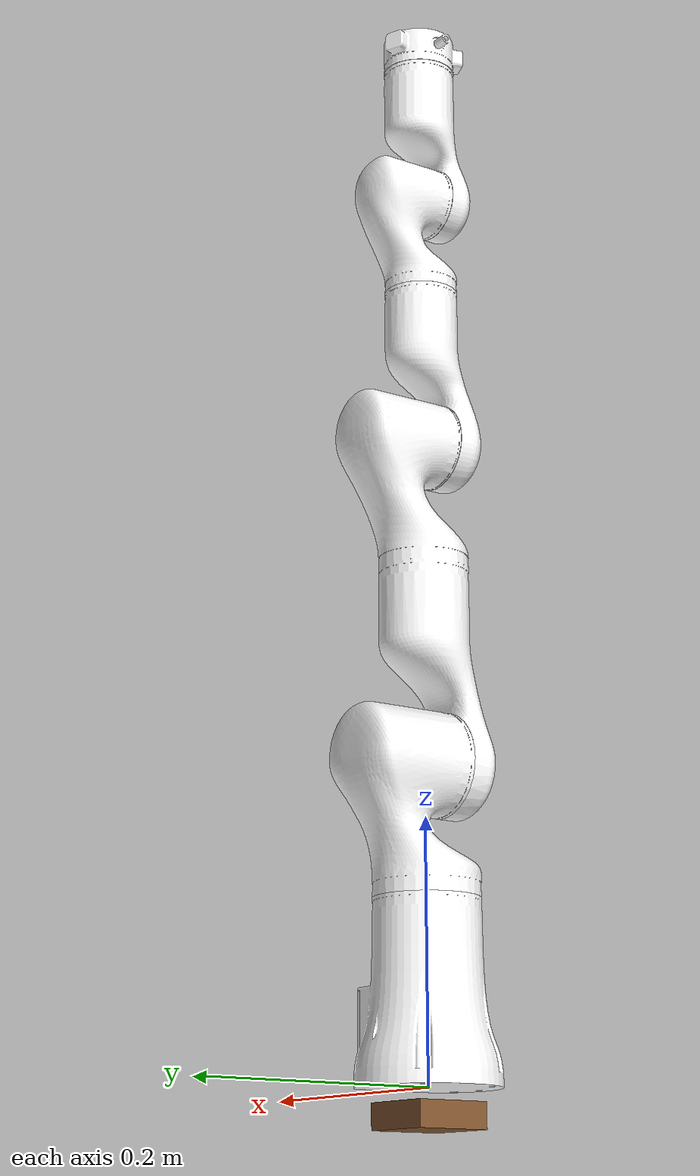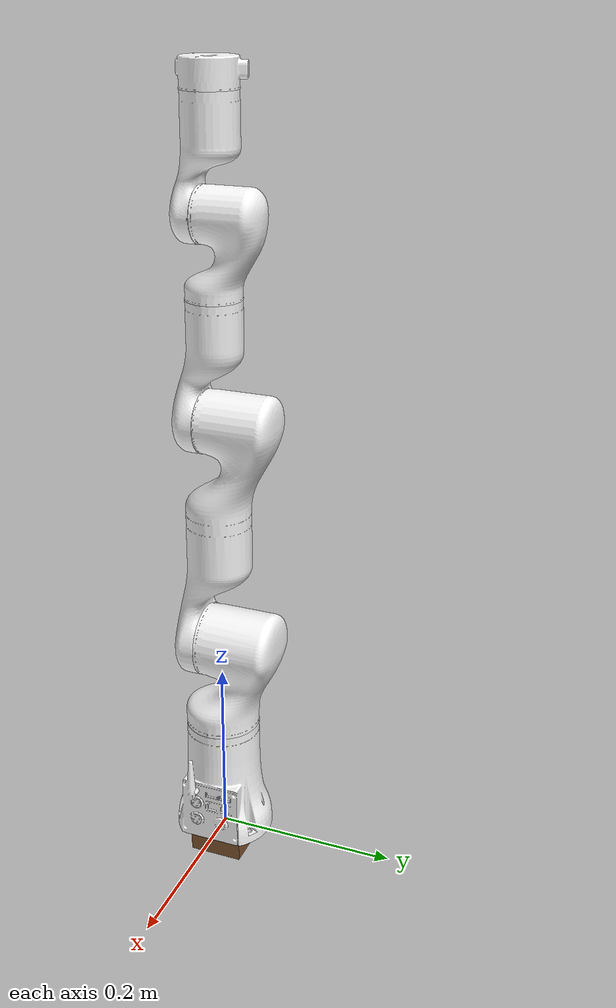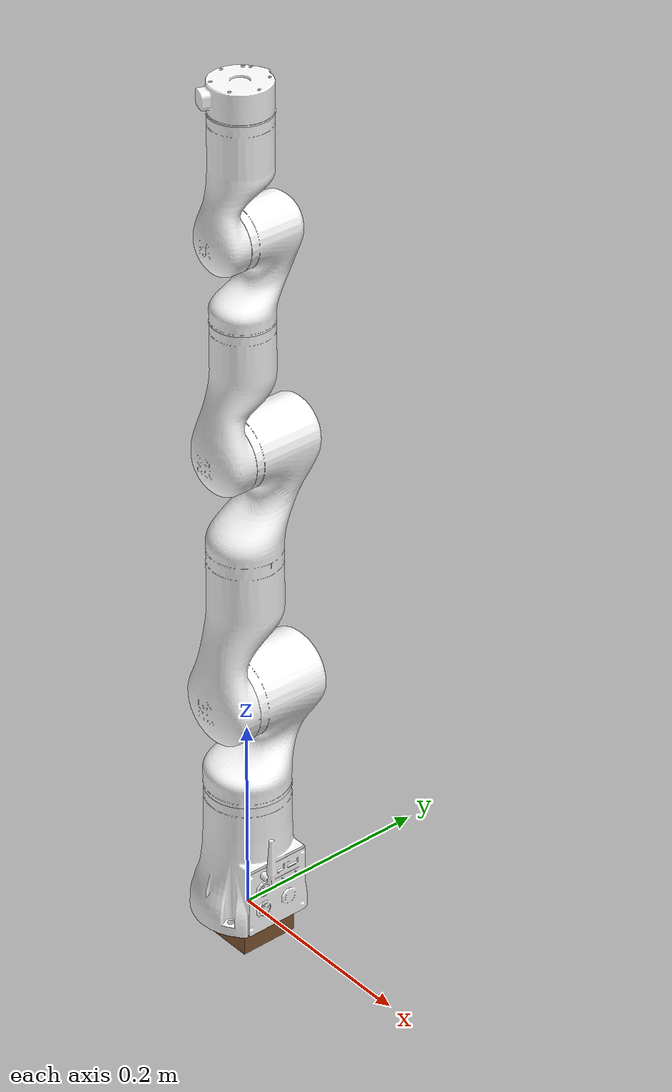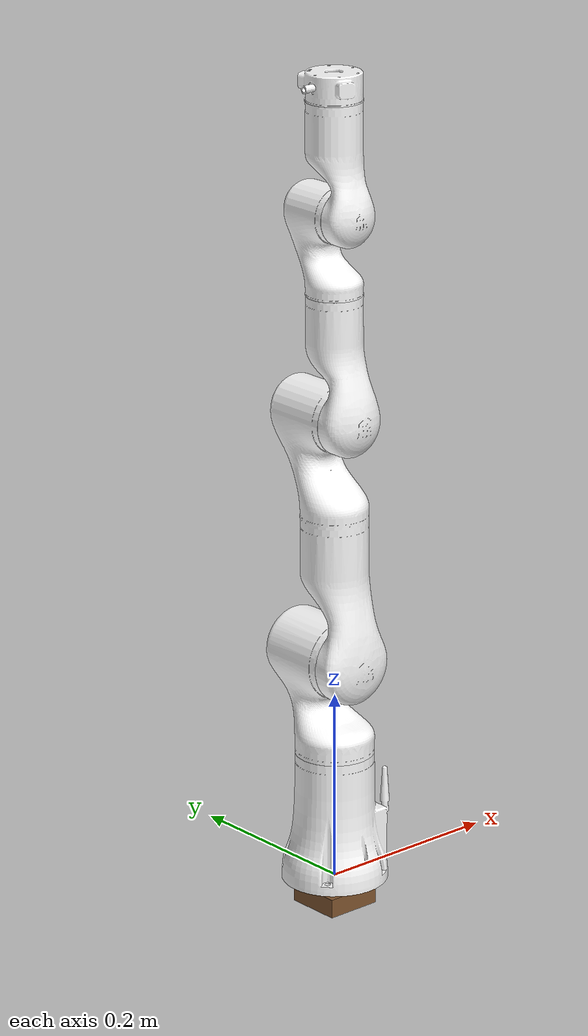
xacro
<?xml version="1.0" encoding="utf-8"?>
<robot  name="rm_65" xmlns:xacro="http://www.ros.org/wiki/xacro">
<xacro:include filename="$(find rm_description)/urdf/RM65/rm_65.transmission.xacro"/>
<xacro:include filename="$(find rm_description)/urdf/RM65/rm_65.gazebo.xacro"/>
  <!-- Inertial matrix -->
  <xacro:macro name="inertial_matrix" params="mass">
    <inertial>
      <mass value="${mass}" />
      <inertia ixx="1.0" ixy="0.0" ixz="0.0" iyy="0.5" iyz="0.0" izz="1.0" />
	</inertial>
  </xacro:macro>
  <xacro:macro name="Box_inertial_matrix" params="m l w h">
    <inertial>
      <mass value="${m}" />
        <inertia ixx="${m*(h*h + l*l)/12}" ixy = "0" ixz = "0"
          iyy="${m*(w*w + l*l)/12}" iyz= "0"
          izz="${m*(w*w + h*h)/12}" />
    </inertial>
  </xacro:macro>
  <link name="dummy">
  </link>

  <!-- ///////////////////////////////////////   bottom_joint   ////////////////////////////////////////// -->
  <joint name="bottom_joint" type="fixed">
    <origin xyz="0 0 0" rpy="0 0 0" />
    <parent link="base_link"/>
    <child link="bottom_link"/>
  </joint>
  <link name="bottom_link">
    <visual>
      <origin xyz=" 0 0 -0.02"  rpy="0 0 0"/>
      <geometry>
        <box size="0.06 0.06 0.02" />
      </geometry>
      <material name="Brown" />
    </visual>
    <collision>
      <origin xyz=" 0 0 0"  rpy="0 0 0"/>
      <geometry>
        <box size="0.06 0.06 0.02" />
      </geometry>
    </collision>
    <xacro:Box_inertial_matrix m="500" l="1" w="1" h="0.02"/>
  </link>

  <link
    name="base_link">
    <inertial>
      <origin
        xyz="-0.000433277303987328 -3.54664423471128E-05 0.0599427668933796"
        rpy="0 0 0" />
      <mass
        value="0.841070778135659" />
      <inertia
        ixx="0.0017261110801622"
        ixy="2.52746264980217E-06"
        ixz="-3.67690303614961E-05"
        iyy="0.00170987405835604"
        iyz="1.67996364994424E-06"
        izz="0.000904023422915791" />
    </inertial>
    <visual>
      <origin
        xyz="0 0 0"
        rpy="0 0 0" />
      <geometry>
        <mesh
          filename="package://rm_description/meshes/RM65/base_link.STL" />
      </geometry>
      <material
        name="">
        <color
          rgba="1 1 1 1" />
      </material>
    </visual>
    <collision>
      <origin
        xyz="0 0 0"
        rpy="0 0 0" />
      <geometry>
        <mesh
          filename="package://rm_description/meshes/RM65/base_link.STL" />
      </geometry>
    </collision>
  </link>

  <gazebo reference="base_link">
    <mu1 value="200000.0"/>
    <mu2 value="200000.0"/>
    <kp value="100000000.0"/>
    <kd value="1.0"/>
  </gazebo>

  <joint name="dummy_joint" type="fixed">
    <parent link="dummy" />
    <child link="base_link" />
  </joint>

  <link
    name="Link1">
    <inertial>
      <origin
        xyz="1.2226305431569E-08 0.0211079974844683 -0.0251854220842269"
        rpy="0 0 0" />
      <mass
        value="0.593563443690403" />
      <inertia
        ixx="0.00126614120341847"
        ixy="-1.294980943835E-08"
        ixz="-9.80120923066996E-09"
        iyy="0.00118168178300364"
        iyz="-0.00021121727444415"
        izz="0.00056135241627747" />
    </inertial>
    <visual>
      <origin
        xyz="0 0 0"
        rpy="0 0 0" />
      <geometry>
        <mesh
          filename="package://rm_description/meshes/RM65/link1.STL" />
      </geometry>
      <material
        name="">
        <color
          rgba="1 1 1 1" />
      </material>
    </visual>
    <collision>
      <origin
        xyz="0 0 0"
        rpy="0 0 0" />
      <geometry>
        <mesh
          filename="package://rm_description/meshes/RM65/link1.STL" />
      </geometry>
    </collision>
  </link>
  <joint
    name="joint1"
    type="revolute">
    <origin
      xyz="0 0 0.2405"
      rpy="0 0 0" />
    <parent
      link="base_link" />
    <child
      link="Link1" />
    <axis
      xyz="0 0 1" />
    <limit
      lower="-3.1"
      upper="3.1"
      effort="60"
      velocity="3.14" />
	<dynamics damping="50" friction="1"/>
  </joint>
  <link
    name="Link2">
    <inertial>
      <origin
        xyz="0.152256463426163 4.75383656106654E-07 -0.00620260383607792"
        rpy="0 0 0" />
      <mass
        value="0.864175046869043" />
      <inertia
        ixx="0.00089150298478414"
        ixy="-2.23268489334765E-08"
        ixz="0.00156246461035015"
        iyy="0.00733754343083901"
        iyz="6.28110889329165E-09"
        izz="0.00697869103915473" />
    </inertial>
    <visual>
      <origin
        xyz="0 0 0"
        rpy="0 0 0" />
      <geometry>
        <mesh
          filename="package://rm_description/meshes/RM65/link2.STL" />
      </geometry>
      <material
        name="">
        <color
          rgba="1 1 1 1" />
      </material>
    </visual>
    <collision>
      <origin
        xyz="0 0 0"
        rpy="0 0 0" />
      <geometry>
        <mesh
          filename="package://rm_description/meshes/RM65/link2.STL" />
      </geometry>
    </collision>
  </link>
  <joint
    name="joint2"
    type="revolute">
    <origin
      xyz="0 0 0"
      rpy="1.5708 -1.5708 0" />
    <parent
      link="Link1" />
    <child
      link="Link2" />
    <axis
      xyz="0 0 1" />
    <limit
      lower="-2.268"
      upper="2.268"
      effort="60"
      velocity="3.14" />
	<dynamics damping="50" friction="1"/>
  </joint>
  <link
    name="Link3">
    <inertial>
      <origin
        xyz="5.05312670989961E-06 -0.0595925663694732 0.010569069212336"
        rpy="0 0 0" />
      <mass
        value="0.289633681624654" />
      <inertia
        ixx="0.00063737100450158"
        ixy="-7.05261293649751E-08"
        ixz="-3.86643272239426E-08"
        iyy="0.00015648388095025"
        iyz="-0.00014461035994916"
        izz="0.000614178164773085" />
    </inertial>
    <visual>
      <origin
        xyz="0 0 0"
        rpy="0 0 0" />
      <geometry>
        <mesh
          filename="package://rm_description/meshes/RM65/link3.STL" />
      </geometry>
      <material
        name="">
        <color
          rgba="1 1 1 1" />
      </material>
    </visual>
    <collision>
      <origin
        xyz="0 0 0"
        rpy="0 0 0" />
      <geometry>
        <mesh
          filename="package://rm_description/meshes/RM65/link3.STL" />
      </geometry>
    </collision>
  </link>
  <joint
    name="joint3"
    type="revolute">
    <origin
      xyz="0.256 0 0"
      rpy="0 0 1.5708" />
    <parent
      link="Link2" />
    <child
      link="Link3" />
    <axis
      xyz="0 0 1" />
    <limit
      lower="-2.355"
      upper="2.355"
      effort="30"
      velocity="3.92" />
	<dynamics damping="50" friction="1"/>
  </joint>
  <link
    name="Link4">
    <inertial>
      <origin
        xyz="1.15516617405898E-06 -0.0180424468598241 -0.0215394748352687"
        rpy="0 0 0" />
      <mass
        value="0.239419768320061" />
      <inertia
        ixx="0.000285938919722783"
        ixy="3.07101359163101E-09"
        ixz="-2.21994118981953E-09"
        iyy="0.000262727540304212"
        iyz="4.4236583260078E-05"
        izz="0.000119888082791859" />
    </inertial>
    <visual>
      <origin
        xyz="0 0 0"
        rpy="0 0 0" />
      <geometry>
        <mesh
          filename="package://rm_description/meshes/RM65/link4.STL" />
      </geometry>
      <material
        name="">
        <color
          rgba="1 1 1 1" />
      </material>
    </visual>
    <collision>
      <origin
        xyz="0 0 0"
        rpy="0 0 0" />
      <geometry>
        <mesh
          filename="package://rm_description/meshes/RM65/link4.STL" />
      </geometry>
    </collision>
  </link>
  <joint
    name="joint4"
    type="revolute">
    <origin
      xyz="0 -0.21 0"
      rpy="1.5708 0 0" />
    <parent
      link="Link3" />
    <child
      link="Link4" />
    <axis
      xyz="0 0 1" />
    <limit
      lower="-3.1"
      upper="3.1"
      effort="10"
      velocity="3.92" />
	<dynamics damping="50" friction="1"/>
  </joint>
  <link
    name="Link5">
    <inertial>
      <origin
        xyz="3.19794786262152E-06 -0.0593808368101458 0.00736804250989326"
        rpy="0 0 0" />
      <mass
        value="0.218799761431678" />
      <inertia
        ixx="0.000350540363914072"
        ixy="-3.41781619975602E-08"
        ixz="-1.77056457224373E-08"
        iyy="0.000104927867487581"
        iyz="-7.82431228461971E-05"
        izz="0.000334482418423629" />
    </inertial>
    <visual>
      <origin
        xyz="0 0 0"
        rpy="0 0 0" />
      <geometry>
        <mesh
          filename="package://rm_description/meshes/RM65/link5.STL" />
      </geometry>
      <material
        name="">
        <color
          rgba="1 1 1 1" />
      </material>
    </visual>
    <collision>
      <origin
        xyz="0 0 0"
        rpy="0 0 0" />
      <geometry>
        <mesh
          filename="package://rm_description/meshes/RM65/link5.STL" />
      </geometry>
    </collision>
  </link>
  <joint
    name="joint5"
    type="revolute">
    <origin
      xyz="0 0 0"
      rpy="-1.5708 0 0" />
    <parent
      link="Link4" />
    <child
      link="Link5" />
    <axis
      xyz="0 0 1" />
    <limit
      lower="-2.233"
      upper="2.233"
      effort="10"
      velocity="3.92" />
	<dynamics damping="50" friction="1"/>
  </joint>
  <link
    name="Link6">
    <inertial>
      <origin
        xyz="0.000714234511756999 -0.000396718732824521 -0.0126723660946126"
        rpy="0 0 0" />
      <mass
        value="0.0649018034311231" />
      <inertia
        ixx="2.02766547502765E-05"
        ixy="-1.32505200276849E-06"
        ixz="-2.5845091522508E-08"
        iyy="1.87986725225022E-05"
        iyz="3.39471452125439E-09"
        izz="3.17885459163081E-05" />
    </inertial>
    <visual>
      <origin
        xyz="0 0 0"
        rpy="0 0 0" />
      <geometry>
        <mesh
          filename="package://rm_description/meshes/RM65/link6.STL" />
      </geometry>
      <material
        name="">
        <color
          rgba="1 1 1 1" />
      </material>
    </visual>
    <collision>
      <origin
        xyz="0 0 0"
        rpy="0 0 0" />
      <geometry>
        <mesh
          filename="package://rm_description/meshes/RM65/link6.STL" />
      </geometry>
    </collision>
  </link>
  <joint
    name="joint6"
    type="revolute">
    <origin
      xyz="0 -0.144 0"
      rpy="1.5708 0 0" />
    <parent
      link="Link5" />
    <child
      link="Link6" />
    <axis
      xyz="0 0 1" />
    <limit
      lower="-6.28"
      upper="6.28"
      effort="10"
      velocity="3.92" />
	<dynamics damping="50" friction="1"/>
  </joint>

  <!-- Transmissions for ROS Control -->
  <xacro:macro name="transmission_block" params="joint_name">
    <transmission name="tran1">
      <type>transmission_interface/SimpleTransmission</type>
      <joint name="${joint_name}">
        <hardwareInterface>hardware_interface/PositionJointInterface</hardwareInterface>
      </joint>
      <actuator name="motor1">
        <hardwareInterface>hardware_interface/PositionJointInterface</hardwareInterface>
        <mechanicalReduction>1</mechanicalReduction>
      </actuator>
    </transmission>
  </xacro:macro>

  <xacro:transmission_block joint_name="joint1"/>
  <xacro:transmission_block joint_name="joint2"/>
  <xacro:transmission_block joint_name="joint3"/>
  <xacro:transmission_block joint_name="joint4"/>
  <xacro:transmission_block joint_name="joint5"/>
  <xacro:transmission_block joint_name="joint6"/>

  <!-- ros_control plugin -->
  <gazebo>
    <plugin name="gazebo_ros_control" filename="libgazebo_ros_control.so">
      <robotNamespace>/arm</robotNamespace>
      <robotSimType>gazebo_ros_control/DefaultRobotHWSim</robotSimType>
      <legacyModeNS>true</legacyModeNS>
    </plugin>
  </gazebo>
</robot>
